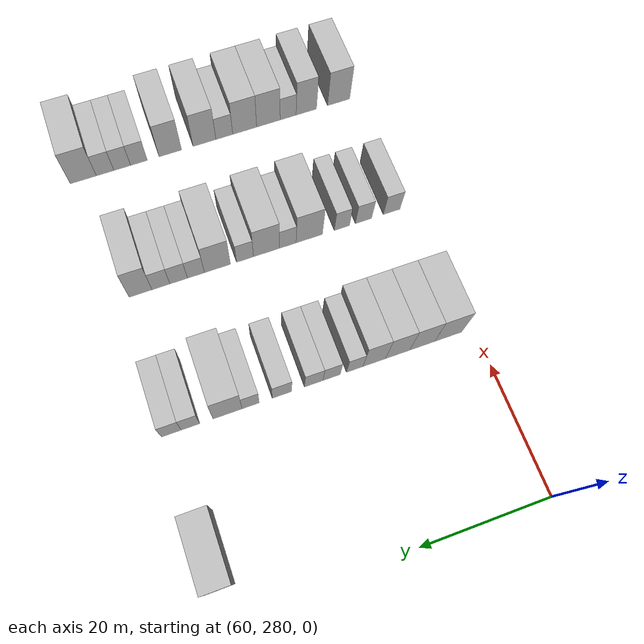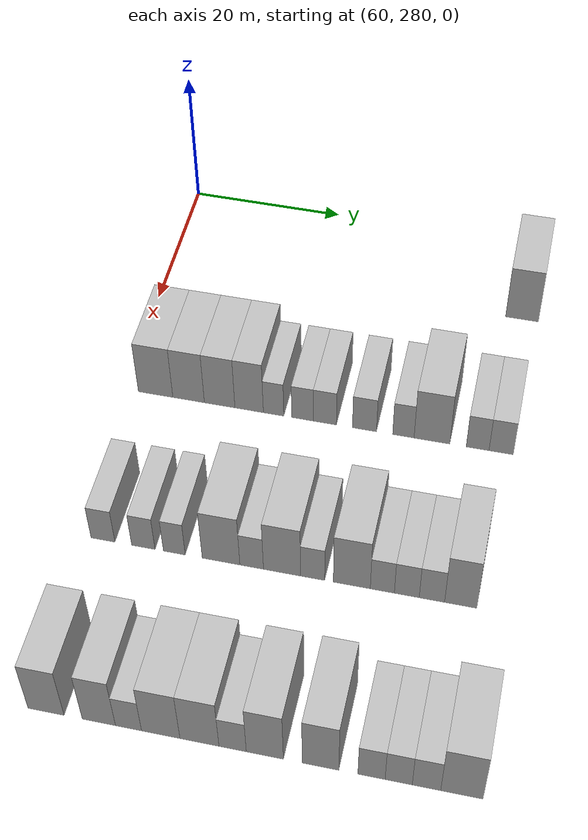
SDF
<sdf version="1.6">
 <world name="default">
  <model name="building_555">
   <static>1</static>
   <pose>69.0000 327.0246 0 0.000000 0.000000 0.000000</pose>
   <link name="link">
    <pose>0 0 4.50 0 0 0</pose>
    <collision name="collision"><geometry><box><size>10.0000 4.2475 9.0000</size></box></geometry></collision>
    <visual name="visual">
     <cast_shadows>0</cast_shadows>
     <geometry><box><size>10.0000 4.2475 9.0000</size></box></geometry>
     <material>
      <script>
       <uri>model://HANNAS_wall/materials/scripts</uri>
       <uri>model://HANNAS_wall/materials/textures</uri>
       <name>vrc/HANNAS_wall</name>
      </script>
     </material>
    </visual>
   </link>
  </model>
  <model name="building_724">
   <static>1</static>
   <pose>91.0000 284.1343 0 0.000000 0.000000 0.000000</pose>
   <link name="link">
    <pose>0 0 4.50 0 0 0</pose>
    <collision name="collision"><geometry><box><size>10.0000 4.4308 9.0000</size></box></geometry></collision>
    <visual name="visual">
     <cast_shadows>0</cast_shadows>
     <geometry><box><size>10.0000 4.4308 9.0000</size></box></geometry>
     <material>
      <script>
       <uri>model://HANNAS_wall/materials/scripts</uri>
       <uri>model://HANNAS_wall/materials/textures</uri>
       <name>vrc/HANNAS_wall</name>
      </script>
     </material>
    </visual>
   </link>
  </model>
  <model name="building_725">
   <static>1</static>
   <pose>91.0000 288.3679 0 0.000000 0.000000 0.000000</pose>
   <link name="link">
    <pose>0 0 4.50 0 0 0</pose>
    <collision name="collision"><geometry><box><size>10.0000 4.0365 9.0000</size></box></geometry></collision>
    <visual name="visual">
     <cast_shadows>0</cast_shadows>
     <geometry><box><size>10.0000 4.0365 9.0000</size></box></geometry>
     <material>
      <script>
       <uri>model://HANNAS_wall/materials/scripts</uri>
       <uri>model://HANNAS_wall/materials/textures</uri>
       <name>vrc/HANNAS_wall</name>
      </script>
     </material>
    </visual>
   </link>
  </model>
  <model name="building_726">
   <static>1</static>
   <pose>91.0000 292.3277 0 0.000000 0.000000 0.000000</pose>
   <link name="link">
    <pose>0 0 4.50 0 0 0</pose>
    <collision name="collision"><geometry><box><size>10.0000 3.8831 9.0000</size></box></geometry></collision>
    <visual name="visual">
     <cast_shadows>0</cast_shadows>
     <geometry><box><size>10.0000 3.8831 9.0000</size></box></geometry>
     <material>
      <script>
       <uri>model://HANNAS_wall/materials/scripts</uri>
       <uri>model://HANNAS_wall/materials/textures</uri>
       <name>vrc/HANNAS_wall</name>
      </script>
     </material>
    </visual>
   </link>
  </model>
  <model name="building_727">
   <static>1</static>
   <pose>91.0000 296.0705 0 0.000000 0.000000 0.000000</pose>
   <link name="link">
    <pose>0 0 4.50 0 0 0</pose>
    <collision name="collision"><geometry><box><size>10.0000 3.6026 9.0000</size></box></geometry></collision>
    <visual name="visual">
     <cast_shadows>0</cast_shadows>
     <geometry><box><size>10.0000 3.6026 9.0000</size></box></geometry>
     <material>
      <script>
       <uri>model://HANNAS_wall/materials/scripts</uri>
       <uri>model://HANNAS_wall/materials/textures</uri>
       <name>vrc/HANNAS_wall</name>
      </script>
     </material>
    </visual>
   </link>
  </model>
  <model name="building_728">
   <static>1</static>
   <pose>91.0000 299.1581 0 0.000000 0.000000 0.000000</pose>
   <link name="link">
    <pose>0 0 3.00 0 0 0</pose>
    <collision name="collision"><geometry><box><size>10.0000 2.5726 6.0000</size></box></geometry></collision>
    <visual name="visual">
     <cast_shadows>0</cast_shadows>
     <geometry><box><size>10.0000 2.5726 6.0000</size></box></geometry>
     <material>
      <script>
       <uri>model://HANNAS_wall/materials/scripts</uri>
       <uri>model://HANNAS_wall/materials/textures</uri>
       <name>vrc/HANNAS_wall</name>
      </script>
     </material>
    </visual>
   </link>
  </model>
  <model name="building_729">
   <static>1</static>
   <pose>91.0000 302.7968 0 0.000000 0.000000 0.000000</pose>
   <link name="link">
    <pose>0 0 3.00 0 0 0</pose>
    <collision name="collision"><geometry><box><size>10.0000 2.7049 6.0000</size></box></geometry></collision>
    <visual name="visual">
     <cast_shadows>0</cast_shadows>
     <geometry><box><size>10.0000 2.7049 6.0000</size></box></geometry>
     <material>
      <script>
       <uri>model://HANNAS_wall/materials/scripts</uri>
       <uri>model://HANNAS_wall/materials/textures</uri>
       <name>vrc/HANNAS_wall</name>
      </script>
     </material>
    </visual>
   </link>
  </model>
  <model name="building_730">
   <static>1</static>
   <pose>91.0000 305.5882 0 0.000000 0.000000 0.000000</pose>
   <link name="link">
    <pose>0 0 3.00 0 0 0</pose>
    <collision name="collision"><geometry><box><size>10.0000 2.8779 6.0000</size></box></geometry></collision>
    <visual name="visual">
     <cast_shadows>0</cast_shadows>
     <geometry><box><size>10.0000 2.8779 6.0000</size></box></geometry>
     <material>
      <script>
       <uri>model://HANNAS_wall/materials/scripts</uri>
       <uri>model://HANNAS_wall/materials/textures</uri>
       <name>vrc/HANNAS_wall</name>
      </script>
     </material>
    </visual>
   </link>
  </model>
  <model name="building_731">
   <static>1</static>
   <pose>91.0000 310.5139 0 0.000000 0.000000 0.000000</pose>
   <link name="link">
    <pose>0 0 3.00 0 0 0</pose>
    <collision name="collision"><geometry><box><size>10.0000 2.9735 6.0000</size></box></geometry></collision>
    <visual name="visual">
     <cast_shadows>0</cast_shadows>
     <geometry><box><size>10.0000 2.9735 6.0000</size></box></geometry>
     <material>
      <script>
       <uri>model://HANNAS_wall/materials/scripts</uri>
       <uri>model://HANNAS_wall/materials/textures</uri>
       <name>vrc/HANNAS_wall</name>
      </script>
     </material>
    </visual>
   </link>
  </model>
  <model name="building_732">
   <static>1</static>
   <pose>91.0000 315.3149 0 0.000000 0.000000 0.000000</pose>
   <link name="link">
    <pose>0 0 3.00 0 0 0</pose>
    <collision name="collision"><geometry><box><size>10.0000 2.6283 6.0000</size></box></geometry></collision>
    <visual name="visual">
     <cast_shadows>0</cast_shadows>
     <geometry><box><size>10.0000 2.6283 6.0000</size></box></geometry>
     <material>
      <script>
       <uri>model://HANNAS_wall/materials/scripts</uri>
       <uri>model://HANNAS_wall/materials/textures</uri>
       <name>vrc/HANNAS_wall</name>
      </script>
     </material>
    </visual>
   </link>
  </model>
  <model name="building_733">
   <static>1</static>
   <pose>91.0000 318.8189 0 0.000000 0.000000 0.000000</pose>
   <link name="link">
    <pose>0 0 4.50 0 0 0</pose>
    <collision name="collision"><geometry><box><size>10.0000 4.3798 9.0000</size></box></geometry></collision>
    <visual name="visual">
     <cast_shadows>0</cast_shadows>
     <geometry><box><size>10.0000 4.3798 9.0000</size></box></geometry>
     <material>
      <script>
       <uri>model://HANNAS_wall/materials/scripts</uri>
       <uri>model://HANNAS_wall/materials/textures</uri>
       <name>vrc/HANNAS_wall</name>
      </script>
     </material>
    </visual>
   </link>
  </model>
  <model name="building_734">
   <static>1</static>
   <pose>91.0000 324.3898 0 0.000000 0.000000 0.000000</pose>
   <link name="link">
    <pose>0 0 3.00 0 0 0</pose>
    <collision name="collision"><geometry><box><size>10.0000 2.7620 6.0000</size></box></geometry></collision>
    <visual name="visual">
     <cast_shadows>0</cast_shadows>
     <geometry><box><size>10.0000 2.7620 6.0000</size></box></geometry>
     <material>
      <script>
       <uri>model://HANNAS_wall/materials/scripts</uri>
       <uri>model://HANNAS_wall/materials/textures</uri>
       <name>vrc/HANNAS_wall</name>
      </script>
     </material>
    </visual>
   </link>
  </model>
  <model name="building_735">
   <static>1</static>
   <pose>91.0000 327.2352 0 0.000000 0.000000 0.000000</pose>
   <link name="link">
    <pose>0 0 3.00 0 0 0</pose>
    <collision name="collision"><geometry><box><size>10.0000 2.9287 6.0000</size></box></geometry></collision>
    <visual name="visual">
     <cast_shadows>0</cast_shadows>
     <geometry><box><size>10.0000 2.9287 6.0000</size></box></geometry>
     <material>
      <script>
       <uri>model://HANNAS_wall/materials/scripts</uri>
       <uri>model://HANNAS_wall/materials/textures</uri>
       <name>vrc/HANNAS_wall</name>
      </script>
     </material>
    </visual>
   </link>
  </model>
  <model name="building_910">
   <static>1</static>
   <pose>113.0000 284.1883 0 0.000000 0.000000 0.000000</pose>
   <link name="link">
    <pose>0 0 3.00 0 0 0</pose>
    <collision name="collision"><geometry><box><size>10.0000 2.8570 6.0000</size></box></geometry></collision>
    <visual name="visual">
     <cast_shadows>0</cast_shadows>
     <geometry><box><size>10.0000 2.8570 6.0000</size></box></geometry>
     <material>
      <script>
       <uri>model://HANNAS_wall/materials/scripts</uri>
       <uri>model://HANNAS_wall/materials/textures</uri>
       <name>vrc/HANNAS_wall</name>
      </script>
     </material>
    </visual>
   </link>
  </model>
  <model name="building_911">
   <static>1</static>
   <pose>113.0000 289.0014 0 0.000000 0.000000 0.000000</pose>
   <link name="link">
    <pose>0 0 3.00 0 0 0</pose>
    <collision name="collision"><geometry><box><size>10.0000 2.7692 6.0000</size></box></geometry></collision>
    <visual name="visual">
     <cast_shadows>0</cast_shadows>
     <geometry><box><size>10.0000 2.7692 6.0000</size></box></geometry>
     <material>
      <script>
       <uri>model://HANNAS_wall/materials/scripts</uri>
       <uri>model://HANNAS_wall/materials/textures</uri>
       <name>vrc/HANNAS_wall</name>
      </script>
     </material>
    </visual>
   </link>
  </model>
  <model name="building_912">
   <static>1</static>
   <pose>113.0000 292.6737 0 0.000000 0.000000 0.000000</pose>
   <link name="link">
    <pose>0 0 3.00 0 0 0</pose>
    <collision name="collision"><geometry><box><size>10.0000 2.5754 6.0000</size></box></geometry></collision>
    <visual name="visual">
     <cast_shadows>0</cast_shadows>
     <geometry><box><size>10.0000 2.5754 6.0000</size></box></geometry>
     <material>
      <script>
       <uri>model://HANNAS_wall/materials/scripts</uri>
       <uri>model://HANNAS_wall/materials/textures</uri>
       <name>vrc/HANNAS_wall</name>
      </script>
     </material>
    </visual>
   </link>
  </model>
  <model name="building_913">
   <static>1</static>
   <pose>113.0000 298.1644 0 0.000000 0.000000 0.000000</pose>
   <link name="link">
    <pose>0 0 4.50 0 0 0</pose>
    <collision name="collision"><geometry><box><size>10.0000 4.4060 9.0000</size></box></geometry></collision>
    <visual name="visual">
     <cast_shadows>0</cast_shadows>
     <geometry><box><size>10.0000 4.4060 9.0000</size></box></geometry>
     <material>
      <script>
       <uri>model://HANNAS_wall/materials/scripts</uri>
       <uri>model://HANNAS_wall/materials/textures</uri>
       <name>vrc/HANNAS_wall</name>
      </script>
     </material>
    </visual>
   </link>
  </model>
  <model name="building_914">
   <static>1</static>
   <pose>113.0000 301.7435 0 0.000000 0.000000 0.000000</pose>
   <link name="link">
    <pose>0 0 3.00 0 0 0</pose>
    <collision name="collision"><geometry><box><size>10.0000 2.7522 6.0000</size></box></geometry></collision>
    <visual name="visual">
     <cast_shadows>0</cast_shadows>
     <geometry><box><size>10.0000 2.7522 6.0000</size></box></geometry>
     <material>
      <script>
       <uri>model://HANNAS_wall/materials/scripts</uri>
       <uri>model://HANNAS_wall/materials/textures</uri>
       <name>vrc/HANNAS_wall</name>
      </script>
     </material>
    </visual>
   </link>
  </model>
  <model name="building_915">
   <static>1</static>
   <pose>113.0000 305.2740 0 0.000000 0.000000 0.000000</pose>
   <link name="link">
    <pose>0 0 4.50 0 0 0</pose>
    <collision name="collision"><geometry><box><size>10.0000 4.3088 9.0000</size></box></geometry></collision>
    <visual name="visual">
     <cast_shadows>0</cast_shadows>
     <geometry><box><size>10.0000 4.3088 9.0000</size></box></geometry>
     <material>
      <script>
       <uri>model://HANNAS_wall/materials/scripts</uri>
       <uri>model://HANNAS_wall/materials/textures</uri>
       <name>vrc/HANNAS_wall</name>
      </script>
     </material>
    </visual>
   </link>
  </model>
  <model name="building_916">
   <static>1</static>
   <pose>113.0000 308.8129 0 0.000000 0.000000 0.000000</pose>
   <link name="link">
    <pose>0 0 3.00 0 0 0</pose>
    <collision name="collision"><geometry><box><size>10.0000 2.7690 6.0000</size></box></geometry></collision>
    <visual name="visual">
     <cast_shadows>0</cast_shadows>
     <geometry><box><size>10.0000 2.7690 6.0000</size></box></geometry>
     <material>
      <script>
       <uri>model://HANNAS_wall/materials/scripts</uri>
       <uri>model://HANNAS_wall/materials/textures</uri>
       <name>vrc/HANNAS_wall</name>
      </script>
     </material>
    </visual>
   </link>
  </model>
  <model name="building_917">
   <static>1</static>
   <pose>113.0000 313.3058 0 0.000000 0.000000 0.000000</pose>
   <link name="link">
    <pose>0 0 4.50 0 0 0</pose>
    <collision name="collision"><geometry><box><size>10.0000 4.2169 9.0000</size></box></geometry></collision>
    <visual name="visual">
     <cast_shadows>0</cast_shadows>
     <geometry><box><size>10.0000 4.2169 9.0000</size></box></geometry>
     <material>
      <script>
       <uri>model://HANNAS_wall/materials/scripts</uri>
       <uri>model://HANNAS_wall/materials/textures</uri>
       <name>vrc/HANNAS_wall</name>
      </script>
     </material>
    </visual>
   </link>
  </model>
  <model name="building_918">
   <static>1</static>
   <pose>113.0000 316.7836 0 0.000000 0.000000 0.000000</pose>
   <link name="link">
    <pose>0 0 3.00 0 0 0</pose>
    <collision name="collision"><geometry><box><size>10.0000 2.7387 6.0000</size></box></geometry></collision>
    <visual name="visual">
     <cast_shadows>0</cast_shadows>
     <geometry><box><size>10.0000 2.7387 6.0000</size></box></geometry>
     <material>
      <script>
       <uri>model://HANNAS_wall/materials/scripts</uri>
       <uri>model://HANNAS_wall/materials/textures</uri>
       <name>vrc/HANNAS_wall</name>
      </script>
     </material>
    </visual>
   </link>
  </model>
  <model name="building_919">
   <static>1</static>
   <pose>113.0000 319.5598 0 0.000000 0.000000 0.000000</pose>
   <link name="link">
    <pose>0 0 3.00 0 0 0</pose>
    <collision name="collision"><geometry><box><size>10.0000 2.8137 6.0000</size></box></geometry></collision>
    <visual name="visual">
     <cast_shadows>0</cast_shadows>
     <geometry><box><size>10.0000 2.8137 6.0000</size></box></geometry>
     <material>
      <script>
       <uri>model://HANNAS_wall/materials/scripts</uri>
       <uri>model://HANNAS_wall/materials/textures</uri>
       <name>vrc/HANNAS_wall</name>
      </script>
     </material>
    </visual>
   </link>
  </model>
  <model name="building_920">
   <static>1</static>
   <pose>113.0000 322.3978 0 0.000000 0.000000 0.000000</pose>
   <link name="link">
    <pose>0 0 3.00 0 0 0</pose>
    <collision name="collision"><geometry><box><size>10.0000 2.8623 6.0000</size></box></geometry></collision>
    <visual name="visual">
     <cast_shadows>0</cast_shadows>
     <geometry><box><size>10.0000 2.8623 6.0000</size></box></geometry>
     <material>
      <script>
       <uri>model://HANNAS_wall/materials/scripts</uri>
       <uri>model://HANNAS_wall/materials/textures</uri>
       <name>vrc/HANNAS_wall</name>
      </script>
     </material>
    </visual>
   </link>
  </model>
  <model name="building_921">
   <static>1</static>
   <pose>113.0000 325.6397 0 0.000000 0.000000 0.000000</pose>
   <link name="link">
    <pose>0 0 4.50 0 0 0</pose>
    <collision name="collision"><geometry><box><size>10.0000 3.6215 9.0000</size></box></geometry></collision>
    <visual name="visual">
     <cast_shadows>0</cast_shadows>
     <geometry><box><size>10.0000 3.6215 9.0000</size></box></geometry>
     <material>
      <script>
       <uri>model://HANNAS_wall/materials/scripts</uri>
       <uri>model://HANNAS_wall/materials/textures</uri>
       <name>vrc/HANNAS_wall</name>
      </script>
     </material>
    </visual>
   </link>
  </model>
  <model name="building_1092">
   <static>1</static>
   <pose>135.0000 284.7773 0 0.000000 0.000000 0.000000</pose>
   <link name="link">
    <pose>0 0 4.50 0 0 0</pose>
    <collision name="collision"><geometry><box><size>10.0000 3.9858 9.0000</size></box></geometry></collision>
    <visual name="visual">
     <cast_shadows>0</cast_shadows>
     <geometry><box><size>10.0000 3.9858 9.0000</size></box></geometry>
     <material>
      <script>
       <uri>model://HANNAS_wall/materials/scripts</uri>
       <uri>model://HANNAS_wall/materials/textures</uri>
       <name>vrc/HANNAS_wall</name>
      </script>
     </material>
    </visual>
   </link>
  </model>
  <model name="building_1093">
   <static>1</static>
   <pose>135.0000 290.5918 0 0.000000 0.000000 0.000000</pose>
   <link name="link">
    <pose>0 0 4.50 0 0 0</pose>
    <collision name="collision"><geometry><box><size>10.0000 3.6432 9.0000</size></box></geometry></collision>
    <visual name="visual">
     <cast_shadows>0</cast_shadows>
     <geometry><box><size>10.0000 3.6432 9.0000</size></box></geometry>
     <material>
      <script>
       <uri>model://HANNAS_wall/materials/scripts</uri>
       <uri>model://HANNAS_wall/materials/textures</uri>
       <name>vrc/HANNAS_wall</name>
      </script>
     </material>
    </visual>
   </link>
  </model>
  <model name="building_1094">
   <static>1</static>
   <pose>135.0000 293.8349 0 0.000000 0.000000 0.000000</pose>
   <link name="link">
    <pose>0 0 3.00 0 0 0</pose>
    <collision name="collision"><geometry><box><size>10.0000 2.8431 6.0000</size></box></geometry></collision>
    <visual name="visual">
     <cast_shadows>0</cast_shadows>
     <geometry><box><size>10.0000 2.8431 6.0000</size></box></geometry>
     <material>
      <script>
       <uri>model://HANNAS_wall/materials/scripts</uri>
       <uri>model://HANNAS_wall/materials/textures</uri>
       <name>vrc/HANNAS_wall</name>
      </script>
     </material>
    </visual>
   </link>
  </model>
  <model name="building_1095">
   <static>1</static>
   <pose>135.0000 297.3332 0 0.000000 0.000000 0.000000</pose>
   <link name="link">
    <pose>0 0 4.50 0 0 0</pose>
    <collision name="collision"><geometry><box><size>10.0000 4.1535 9.0000</size></box></geometry></collision>
    <visual name="visual">
     <cast_shadows>0</cast_shadows>
     <geometry><box><size>10.0000 4.1535 9.0000</size></box></geometry>
     <material>
      <script>
       <uri>model://HANNAS_wall/materials/scripts</uri>
       <uri>model://HANNAS_wall/materials/textures</uri>
       <name>vrc/HANNAS_wall</name>
      </script>
     </material>
    </visual>
   </link>
  </model>
  <model name="building_1096">
   <static>1</static>
   <pose>135.0000 301.5099 0 0.000000 0.000000 0.000000</pose>
   <link name="link">
    <pose>0 0 4.50 0 0 0</pose>
    <collision name="collision"><geometry><box><size>10.0000 4.1999 9.0000</size></box></geometry></collision>
    <visual name="visual">
     <cast_shadows>0</cast_shadows>
     <geometry><box><size>10.0000 4.1999 9.0000</size></box></geometry>
     <material>
      <script>
       <uri>model://HANNAS_wall/materials/scripts</uri>
       <uri>model://HANNAS_wall/materials/textures</uri>
       <name>vrc/HANNAS_wall</name>
      </script>
     </material>
    </visual>
   </link>
  </model>
  <model name="building_1097">
   <static>1</static>
   <pose>135.0000 305.0700 0 0.000000 0.000000 0.000000</pose>
   <link name="link">
    <pose>0 0 3.00 0 0 0</pose>
    <collision name="collision"><geometry><box><size>10.0000 2.9203 6.0000</size></box></geometry></collision>
    <visual name="visual">
     <cast_shadows>0</cast_shadows>
     <geometry><box><size>10.0000 2.9203 6.0000</size></box></geometry>
     <material>
      <script>
       <uri>model://HANNAS_wall/materials/scripts</uri>
       <uri>model://HANNAS_wall/materials/textures</uri>
       <name>vrc/HANNAS_wall</name>
      </script>
     </material>
    </visual>
   </link>
  </model>
  <model name="building_1098">
   <static>1</static>
   <pose>135.0000 308.5017 0 0.000000 0.000000 0.000000</pose>
   <link name="link">
    <pose>0 0 4.50 0 0 0</pose>
    <collision name="collision"><geometry><box><size>10.0000 3.9431 9.0000</size></box></geometry></collision>
    <visual name="visual">
     <cast_shadows>0</cast_shadows>
     <geometry><box><size>10.0000 3.9431 9.0000</size></box></geometry>
     <material>
      <script>
       <uri>model://HANNAS_wall/materials/scripts</uri>
       <uri>model://HANNAS_wall/materials/textures</uri>
       <name>vrc/HANNAS_wall</name>
      </script>
     </material>
    </visual>
   </link>
  </model>
  <model name="building_1099">
   <static>1</static>
   <pose>135.0000 314.3920 0 0.000000 0.000000 0.000000</pose>
   <link name="link">
    <pose>0 0 4.50 0 0 0</pose>
    <collision name="collision"><geometry><box><size>10.0000 3.8376 9.0000</size></box></geometry></collision>
    <visual name="visual">
     <cast_shadows>0</cast_shadows>
     <geometry><box><size>10.0000 3.8376 9.0000</size></box></geometry>
     <material>
      <script>
       <uri>model://HANNAS_wall/materials/scripts</uri>
       <uri>model://HANNAS_wall/materials/textures</uri>
       <name>vrc/HANNAS_wall</name>
      </script>
     </material>
    </visual>
   </link>
  </model>
  <model name="building_1100">
   <static>1</static>
   <pose>135.0000 319.7279 0 0.000000 0.000000 0.000000</pose>
   <link name="link">
    <pose>0 0 3.00 0 0 0</pose>
    <collision name="collision"><geometry><box><size>10.0000 2.8341 6.0000</size></box></geometry></collision>
    <visual name="visual">
     <cast_shadows>0</cast_shadows>
     <geometry><box><size>10.0000 2.8341 6.0000</size></box></geometry>
     <material>
      <script>
       <uri>model://HANNAS_wall/materials/scripts</uri>
       <uri>model://HANNAS_wall/materials/textures</uri>
       <name>vrc/HANNAS_wall</name>
      </script>
     </material>
    </visual>
   </link>
  </model>
  <model name="building_1101">
   <static>1</static>
   <pose>135.0000 322.5517 0 0.000000 0.000000 0.000000</pose>
   <link name="link">
    <pose>0 0 3.00 0 0 0</pose>
    <collision name="collision"><geometry><box><size>10.0000 2.8135 6.0000</size></box></geometry></collision>
    <visual name="visual">
     <cast_shadows>0</cast_shadows>
     <geometry><box><size>10.0000 2.8135 6.0000</size></box></geometry>
     <material>
      <script>
       <uri>model://HANNAS_wall/materials/scripts</uri>
       <uri>model://HANNAS_wall/materials/textures</uri>
       <name>vrc/HANNAS_wall</name>
      </script>
     </material>
    </visual>
   </link>
  </model>
  <model name="building_1102">
   <static>1</static>
   <pose>135.0000 325.4269 0 0.000000 0.000000 0.000000</pose>
   <link name="link">
    <pose>0 0 3.00 0 0 0</pose>
    <collision name="collision"><geometry><box><size>10.0000 2.9370 6.0000</size></box></geometry></collision>
    <visual name="visual">
     <cast_shadows>0</cast_shadows>
     <geometry><box><size>10.0000 2.9370 6.0000</size></box></geometry>
     <material>
      <script>
       <uri>model://HANNAS_wall/materials/scripts</uri>
       <uri>model://HANNAS_wall/materials/textures</uri>
       <name>vrc/HANNAS_wall</name>
      </script>
     </material>
    </visual>
   </link>
  </model>
  <model name="building_1103">
   <static>1</static>
   <pose>135.0000 329.0645 0 0.000000 0.000000 0.000000</pose>
   <link name="link">
    <pose>0 0 4.50 0 0 0</pose>
    <collision name="collision"><geometry><box><size>10.0000 4.3382 9.0000</size></box></geometry></collision>
    <visual name="visual">
     <cast_shadows>0</cast_shadows>
     <geometry><box><size>10.0000 4.3382 9.0000</size></box></geometry>
     <material>
      <script>
       <uri>model://HANNAS_wall/materials/scripts</uri>
       <uri>model://HANNAS_wall/materials/textures</uri>
       <name>vrc/HANNAS_wall</name>
      </script>
     </material>
    </visual>
   </link>
  </model>
 </world>
</sdf>
